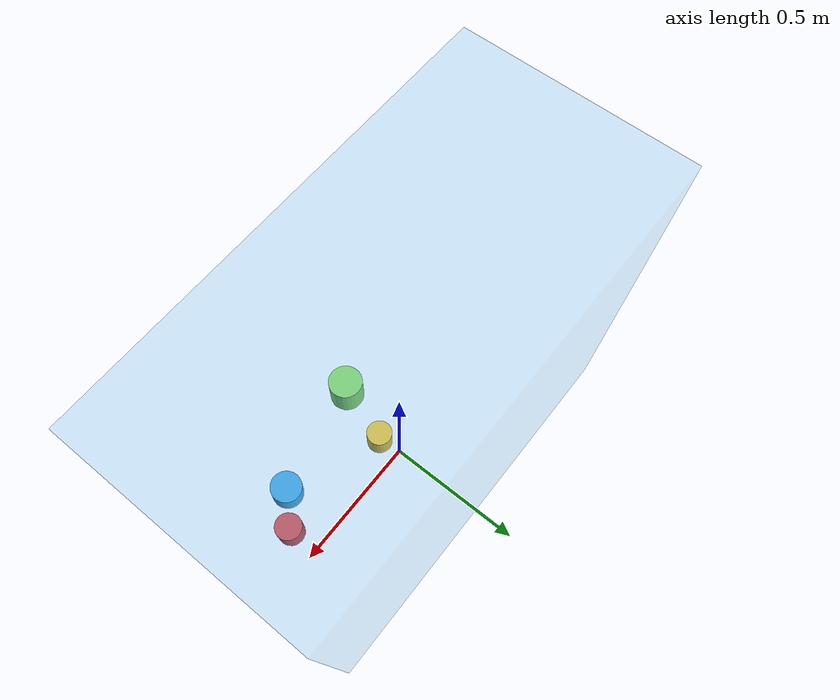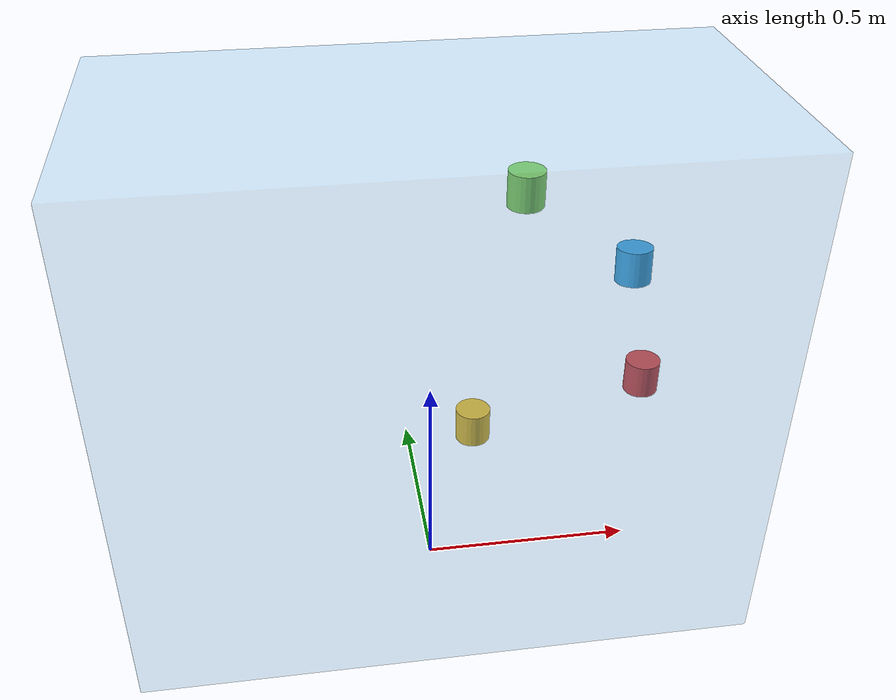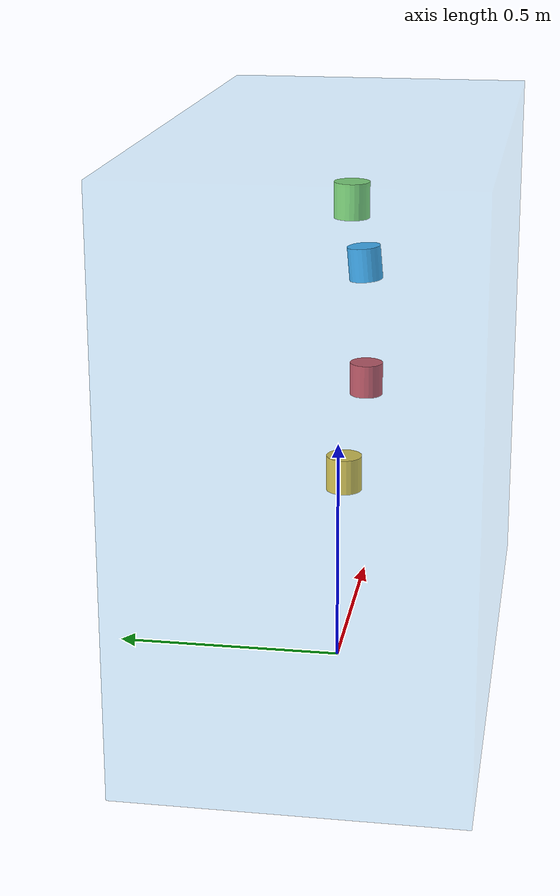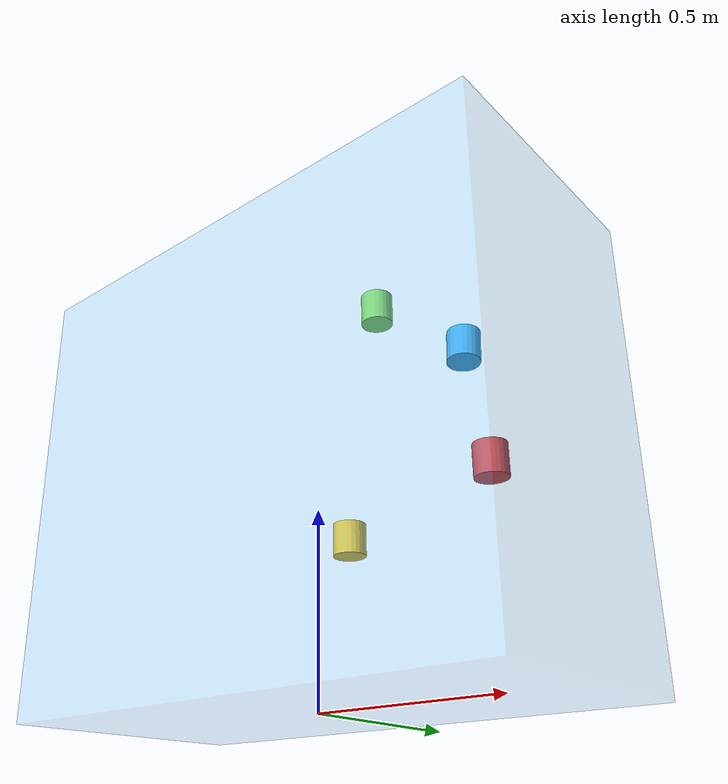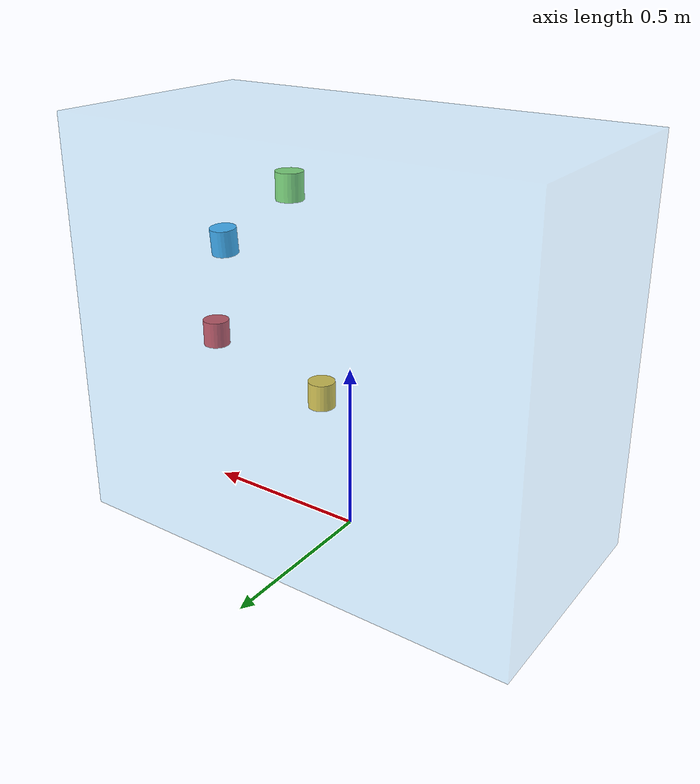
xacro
<?xml version="1.0"?>
<!-- HH_251215: camping cart sensor kit URDF -->
<robot name="camping_cart_sensor_kit" xmlns:xacro="http://www.ros.org/wiki/xacro">
  <xacro:arg name="base_link" default="robot_base_link"/>
  <!-- HH_260220: Introduce a dedicated sensor kit anchor frame under robot_base_link. -->
  <xacro:arg name="sensor_kit_base_link" default="sensor_kit_base_link"/>
  <xacro:arg name="base_length" default="1.4"/>
  <xacro:arg name="base_width" default="0.7"/>
  <xacro:arg name="base_height" default="1.2"/>

  <xacro:arg name="imu_xyz" default="0.1 0.0 0.4"/>
  <xacro:arg name="imu_rpy" default="0.0 0.0 0.0"/>
  <xacro:arg name="gnss_xyz" default="0.2 0.0 1.0"/>
  <xacro:arg name="gnss_rpy" default="0.0 0.0 0.0"/>
  <xacro:arg name="lidar_xyz" default="0.5 0.0 0.5"/>
  <xacro:arg name="lidar_rpy" default="0.0 0.0 0.0"/>
  <xacro:arg name="camera_front_xyz" default="0.45 0.0 0.8"/>
  <xacro:arg name="camera_front_rpy" default="-0.087266 0.0 0.0"/>

  <xacro:property name="base_link_name" value="$(arg base_link)"/>
  <xacro:property name="sensor_kit_base_link_name" value="$(arg sensor_kit_base_link)"/>
  <xacro:property name="base_length_val" value="$(arg base_length)"/>
  <xacro:property name="base_width_val" value="$(arg base_width)"/>
  <xacro:property name="base_height_val" value="$(arg base_height)"/>

  <xacro:macro name="sensor_link" params="name parent xyz rpy color_rgba">
    <link name="${name}">
      <visual>
        <origin xyz="0 0 0" rpy="0 0 0"/>
        <geometry>
          <cylinder radius="0.04" length="0.08"/>
        </geometry>
        <material name="${name}_mat">
          <color rgba="${color_rgba}"/>
        </material>
      </visual>
      <collision>
        <origin xyz="0 0 0" rpy="0 0 0"/>
        <geometry>
          <cylinder radius="0.04" length="0.08"/>
        </geometry>
      </collision>
      <inertial>
        <mass value="0.1"/>
        <origin xyz="0 0 0" rpy="0 0 0"/>
        <inertia ixx="1e-4" ixy="0" ixz="0" iyy="1e-4" iyz="0" izz="1e-4"/>
      </inertial>
    </link>
    <joint name="${name}_joint" type="fixed">
      <parent link="${parent}"/>
      <child link="${name}"/>
      <origin xyz="${xyz}" rpy="${rpy}"/>
    </joint>
  </xacro:macro>

  <link name="${base_link_name}">
    <visual>
      <origin xyz="0 0 ${base_height_val/2}" rpy="0 0 0"/>
      <geometry>
        <box size="${base_length_val} ${base_width_val} ${base_height_val}"/>
      </geometry>
      <material name="body_color">
        <color rgba="0.1 0.6 0.9 0.2"/>
      </material>
    </visual>
    <collision>
      <origin xyz="0 0 ${base_height_val/2}" rpy="0 0 0"/>
      <geometry>
        <box size="${base_length_val} ${base_width_val} ${base_height_val}"/>
      </geometry>
    </collision>
    <inertial>
      <mass value="25.0"/>
      <origin xyz="0 0 ${base_height_val/2}" rpy="0 0 0"/>
      <inertia ixx="1.0" ixy="0.0" ixz="0.0" iyy="1.0" iyz="0.0" izz="1.0"/>
    </inertial>
  </link>

  <link name="${sensor_kit_base_link_name}"/>
  <joint name="${base_link_name}_to_${sensor_kit_base_link_name}" type="fixed">
    <parent link="${base_link_name}"/>
    <child link="${sensor_kit_base_link_name}"/>
    <origin xyz="0 0 0" rpy="0 0 0"/>
  </joint>

  <!-- HH_260220: Keep only the active sensing stack frames on the sensor kit tree. -->
  <xacro:sensor_link name="imu_link" parent="${sensor_kit_base_link_name}" xyz="$(arg imu_xyz)" rpy="$(arg imu_rpy)" color_rgba="1.0 0.8 0.2 1.0"/>
  <xacro:sensor_link name="gnss_link" parent="${sensor_kit_base_link_name}" xyz="$(arg gnss_xyz)" rpy="$(arg gnss_rpy)" color_rgba="0.6 0.9 0.4 1.0"/>
  <xacro:sensor_link name="lidar_link" parent="${sensor_kit_base_link_name}" xyz="$(arg lidar_xyz)" rpy="$(arg lidar_rpy)" color_rgba="0.9 0.3 0.3 1.0"/>
  <xacro:sensor_link name="camera_front_link" parent="${sensor_kit_base_link_name}" xyz="$(arg camera_front_xyz)" rpy="$(arg camera_front_rpy)" color_rgba="0.3 0.7 0.95 1.0"/>
</robot>
